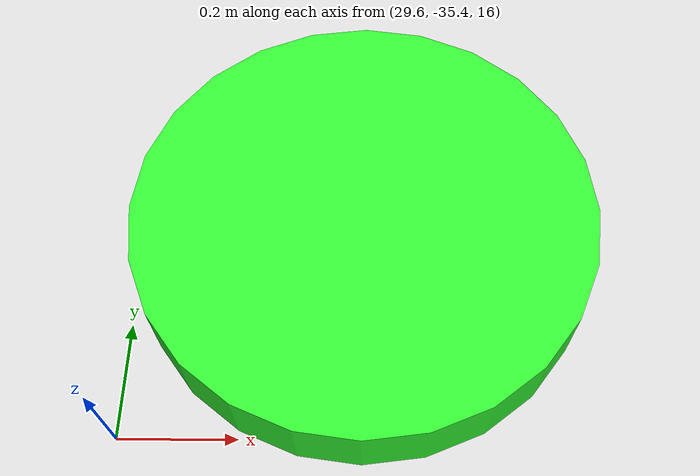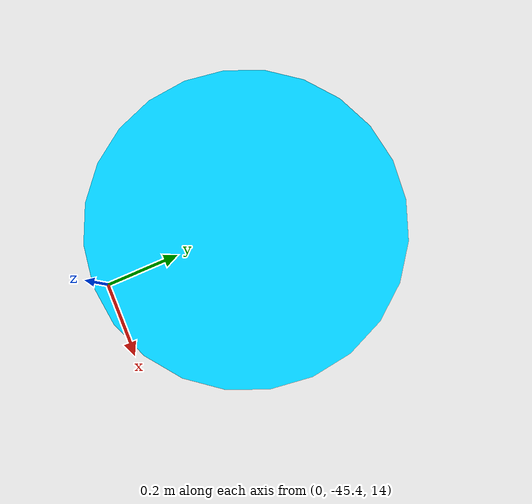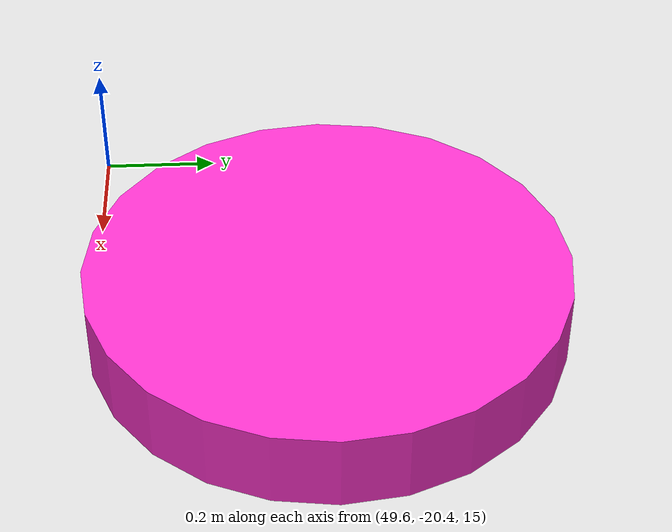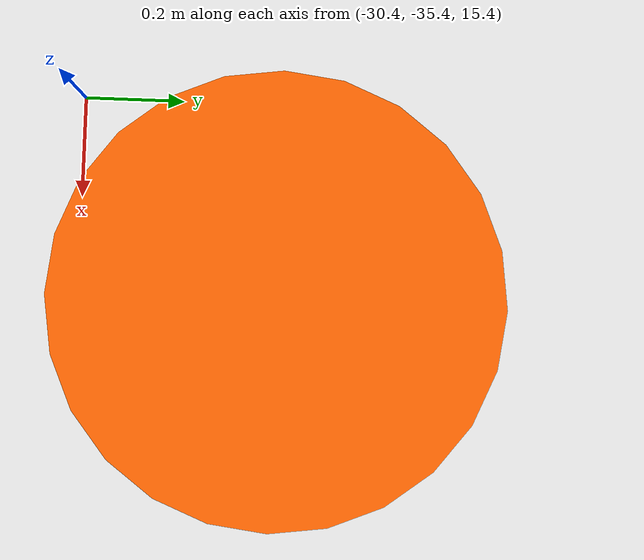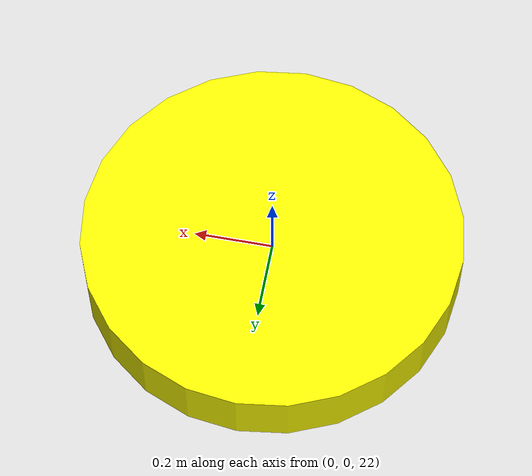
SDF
<sdf version="1.8">
 <world name="himalayan_disaster_world">
  <physics name="1ms" type="dart">
   <max_step_size>0.001</max_step_size>
   <real_time_factor>1.0</real_time_factor>
   <real_time_update_rate>1000</real_time_update_rate>
  </physics>
  <plugin filename="gz-sim-physics-system" name="gz::sim::systems::Physics"/>
  <plugin filename="gz-sim-user-commands-system" name="gz::sim::systems::UserCommands"/>
  <plugin filename="gz-sim-scene-broadcaster-system" name="gz::sim::systems::SceneBroadcaster"/>
  <plugin filename="gz-sim-sensors-system" name="gz::sim::systems::Sensors">
   <render_engine>ogre2</render_engine>
  </plugin>
  <plugin filename="gz-sim-imu-system" name="gz::sim::systems::Imu"/>
  <plugin filename="gz-sim-navsat-system" name="gz::sim::systems::NavSat"/>
  <light type="directional" name="monsoon_sun">
   <pose>0 0 100 0 0.45 1.2</pose>
   <diffuse>0.72 0.76 0.82 1</diffuse>
   <specular>0.25 0.28 0.35 1</specular>
   <attenuation><range>1000</range><constant>0.9</constant><linear>0.01</linear></attenuation>
  </light>
  <scene>
   <ambient>0.48 0.52 0.58 1.0</ambient>
   <background>0.55 0.60 0.68 1.0</background>
   <shadows>true</shadows>
   <grid>false</grid>
  </scene>
  <model name="uav_alpha">
   <pose>0.0 -45.0 14.0 0 0 1.57</pose>
   <static>false</static>
   <link name="base_link">
    <gravity>false</gravity>
    <visual name="v">
     <geometry><cylinder><radius>0.42</radius><length>0.14</length></cylinder></geometry>
     <material><ambient>0 0.8 1 1</ambient><diffuse>0 0.8 1 1</diffuse><emissive>0 0.4 0.8 1</emissive></material>
    </visual>
   </link>
   <plugin filename="gz-sim-velocity-control-system" name="gz::sim::systems::VelocityControl">
    <topic>/uav_alpha/gazebo/command/twist</topic>
   </plugin>
   <plugin filename="gz-sim-odometry-publisher-system" name="gz::sim::systems::OdometryPublisher">
    <dimensions>3</dimensions>
   </plugin>
  </model>
  <model name="uav_beta">
   <pose>-30.0 -35.0 15.5 0 0 1.57</pose>
   <static>false</static>
   <link name="base_link">
    <gravity>false</gravity>
    <visual name="v">
     <geometry><cylinder><radius>0.42</radius><length>0.14</length></cylinder></geometry>
     <material><ambient>1 0.4 0 1</ambient><diffuse>1 0.4 0 1</diffuse><emissive>0.8 0.3 0 1</emissive></material>
    </visual>
   </link>
   <plugin filename="gz-sim-velocity-control-system" name="gz::sim::systems::VelocityControl">
    <topic>/uav_beta/gazebo/command/twist</topic>
   </plugin>
   <plugin filename="gz-sim-odometry-publisher-system" name="gz::sim::systems::OdometryPublisher">
    <dimensions>3</dimensions>
   </plugin>
  </model>
  <model name="uav_gamma">
   <pose>30.0 -35.0 16.0 0 0 1.57</pose>
   <static>false</static>
   <link name="base_link">
    <gravity>false</gravity>
    <visual name="v">
     <geometry><cylinder><radius>0.42</radius><length>0.14</length></cylinder></geometry>
     <material>
      <ambient>0.2 1 0.2 1</ambient>
      <diffuse>0.2 1 0.2 1</diffuse>
      <emissive>0.1 0.6 0.1 1</emissive>
     </material>
    </visual>
   </link>
   <plugin filename="gz-sim-velocity-control-system" name="gz::sim::systems::VelocityControl">
    <topic>/uav_gamma/gazebo/command/twist</topic>
   </plugin>
   <plugin filename="gz-sim-odometry-publisher-system" name="gz::sim::systems::OdometryPublisher">
    <dimensions>3</dimensions>
   </plugin>
  </model>
  <model name="uav_delta">
   <pose>50.0 -20.0 15.0 0 0 1.57</pose>
   <static>false</static>
   <link name="base_link">
    <gravity>false</gravity>
    <visual name="v">
     <geometry><cylinder><radius>0.42</radius><length>0.14</length></cylinder></geometry>
     <material>
      <ambient>1 0.2 0.8 1</ambient>
      <diffuse>1 0.2 0.8 1</diffuse>
      <emissive>0.7 0.1 0.5 1</emissive>
     </material>
    </visual>
   </link>
   <plugin filename="gz-sim-velocity-control-system" name="gz::sim::systems::VelocityControl">
    <topic>/uav_delta/gazebo/command/twist</topic>
   </plugin>
   <plugin filename="gz-sim-odometry-publisher-system" name="gz::sim::systems::OdometryPublisher">
    <dimensions>3</dimensions>
   </plugin>
  </model>
  <model name="uav_epsilon">
   <pose>0.0 0.0 22.0 0 0 1.57</pose>
   <static>false</static>
   <link name="base_link">
    <gravity>false</gravity>
    <visual name="v">
     <geometry><cylinder><radius>0.48</radius><length>0.16</length></cylinder></geometry>
     <material><ambient>1 1 0 1</ambient><diffuse>1 1 0 1</diffuse><emissive>0.8 0.8 0 1</emissive></material>
    </visual>
   </link>
   <plugin filename="gz-sim-velocity-control-system" name="gz::sim::systems::VelocityControl">
    <topic>/uav_epsilon/gazebo/command/twist</topic>
   </plugin>
   <plugin filename="gz-sim-odometry-publisher-system" name="gz::sim::systems::OdometryPublisher">
    <dimensions>3</dimensions>
   </plugin>
  </model>
 </world>
</sdf>
